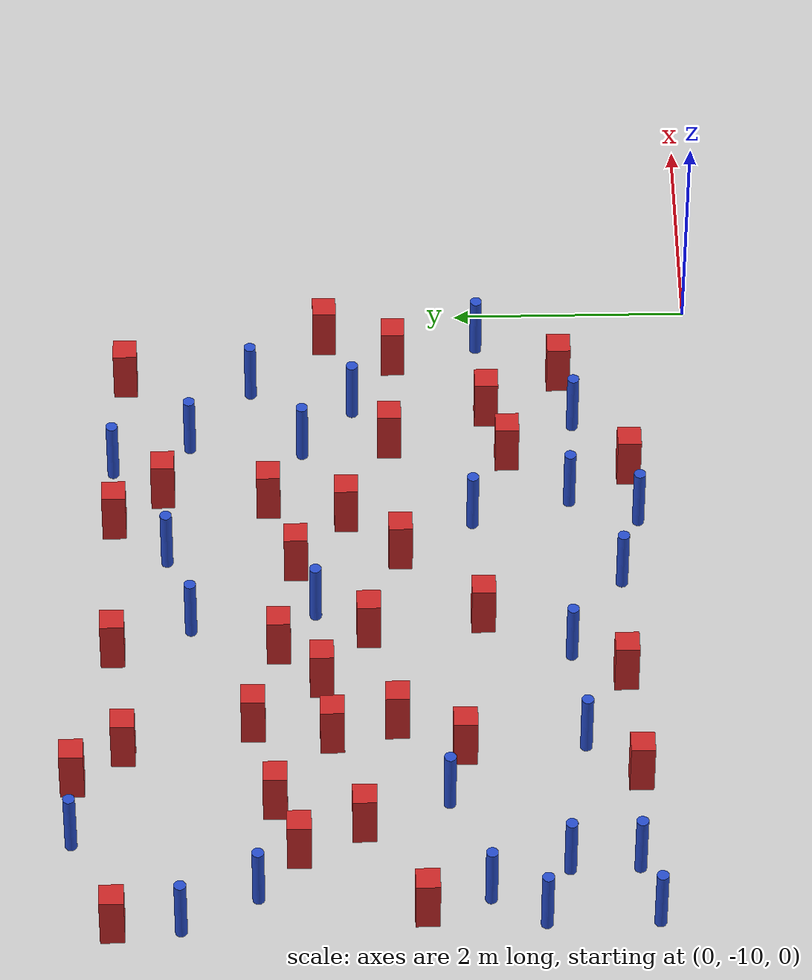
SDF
<sdf version="1.6">
 <world name="default">
  <model name="ground_plane">
   <static>1</static>
   <link name="link">
    <collision name="collision">
     <geometry><plane><normal>0 0 1</normal><size>100 100</size></plane></geometry>
     <surface><friction><ode><mu>100</mu><mu2>50</mu2></ode></friction></surface>
    </collision>
    <visual name="visual">
     <cast_shadows>0</cast_shadows>
     <geometry><plane><normal>0 0 1</normal><size>100 100</size></plane></geometry>
     <material>
      <ambient>1.0 1.0 1.0 1.0</ambient>
      <diffuse>0.8 0.8 0.8 1.0</diffuse>
      <specular>0.01 0.01 0.01 1.000000</specular>
     </material>
    </visual>
   </link>
  </model>
  <model name="pole_obstacle1">
   <static>true</static>
   <pose>-3.93958135462 -8.87356897019 -9.4761961606e-06 5.49618799729e-07 2.36310414e-07 -1.55090534824e-07</pose>
   <link name="link">
    <pose>0 0 0.3 0 -0 0</pose>
    <inertial>
     <mass>1</mass>
     <inertia><ixx>0.145833</ixx><ixy>0</ixy><ixz>0</ixz><iyy>0.145833</iyy><iyz>0</iyz><izz>0.125</izz></inertia>
    </inertial>
    <collision name="collision">
     <geometry><cylinder><radius>0.05</radius><length>.6</length></cylinder></geometry>
    </collision>
    <visual name="visual">
     <geometry><cylinder><radius>0.05</radius><length>.6</length></cylinder></geometry>
     <material>
      <script><name>Gazebo/Blue</name><uri>file://media/materials/scripts/gazebo.material</uri></script>
     </material>
    </visual>
   </link>
  </model>
  <model name="square_post_obstacle1">
   <static>true</static>
   <pose>-3.71598876451 -7.18405634265 -6.11067671241e-07 -5.50515727128e-06 -8.79689657224e-07 2.37013304536e-05</pose>
   <link name="link">
    <pose>0 0 0.25 0 -0 0</pose>
    <inertial>
     <mass>100</mass>
     <inertia>
      <ixx>0.166667</ixx>
      <ixy>0</ixy>
      <ixz>0</ixz>
      <iyy>0.166667</iyy>
      <iyz>0</iyz>
      <izz>0.166667</izz>
     </inertia>
    </inertial>
    <collision name="collision"><geometry><box><size>.2 .2 .5</size></box></geometry></collision>
    <visual name="visual">
     <geometry><box><size>.2 .2 .5</size></box></geometry>
     <material>
      <script><name>Gazebo/Red</name><uri>file://media/materials/scripts/gazebo.material</uri></script>
     </material>
    </visual>
   </link>
  </model>
  <model name="square_post_obstacle4">
   <static>true</static>
   <pose>-5.00308649444 -7.95392521139 -6.11067671241e-07 -5.50515727128e-06 -8.79689657224e-07 2.37013304536e-05</pose>
   <link name="link">
    <pose>0 0 0.25 0 -0 0</pose>
    <inertial>
     <mass>100</mass>
     <inertia>
      <ixx>0.166667</ixx>
      <ixy>0</ixy>
      <ixz>0</ixz>
      <iyy>0.166667</iyy>
      <iyz>0</iyz>
      <izz>0.166667</izz>
     </inertia>
    </inertial>
    <collision name="collision"><geometry><box><size>.2 .2 .5</size></box></geometry></collision>
    <visual name="visual">
     <geometry><box><size>.2 .2 .5</size></box></geometry>
     <material>
      <script><name>Gazebo/Red</name><uri>file://media/materials/scripts/gazebo.material</uri></script>
     </material>
    </visual>
   </link>
  </model>
  <model name="pole_obstacle10">
   <static>true</static>
   <pose>-6.2350550895 -8.77180604748 -9.47619616065e-06 5.49618799737e-07 2.36310414065e-07 -1.55090534796e-07</pose>
   <link name="link">
    <pose>0 0 0.3 0 -0 0</pose>
    <inertial>
     <mass>1</mass>
     <inertia><ixx>0.145833</ixx><ixy>0</ixy><ixz>0</ixz><iyy>0.145833</iyy><iyz>0</iyz><izz>0.125</izz></inertia>
    </inertial>
    <collision name="collision">
     <geometry><cylinder><radius>0.05</radius><length>.6</length></cylinder></geometry>
    </collision>
    <visual name="visual">
     <geometry><cylinder><radius>0.05</radius><length>.6</length></cylinder></geometry>
     <material>
      <script><name>Gazebo/Blue</name><uri>file://media/materials/scripts/gazebo.material</uri></script>
     </material>
    </visual>
   </link>
  </model>
  <model name="pole_obstacle15">
   <static>true</static>
   <pose>-1.61575275957 -6.651373899 -9.47619616065e-06 5.49618799737e-07 2.36310414061e-07 -1.550905348e-07</pose>
   <link name="link">
    <pose>0 0 0.3 0 -0 0</pose>
    <inertial>
     <mass>1</mass>
     <inertia><ixx>0.145833</ixx><ixy>0</ixy><ixz>0</ixz><iyy>0.145833</iyy><iyz>0</iyz><izz>0.125</izz></inertia>
    </inertial>
    <collision name="collision">
     <geometry><cylinder><radius>0.05</radius><length>.6</length></cylinder></geometry>
    </collision>
    <visual name="visual">
     <geometry><cylinder><radius>0.05</radius><length>.6</length></cylinder></geometry>
     <material>
      <script><name>Gazebo/Blue</name><uri>file://media/materials/scripts/gazebo.material</uri></script>
     </material>
    </visual>
   </link>
  </model>
  <model name="pole_obstacle21">
   <static>true</static>
   <pose>-2.43675443596 -9.49415780647 -9.4761961606e-06 5.49618799729e-07 2.36310414e-07 -1.55090534824e-07</pose>
   <link name="link">
    <pose>0 0 0.3 0 -0 0</pose>
    <inertial>
     <mass>1</mass>
     <inertia><ixx>0.145833</ixx><ixy>0</ixy><ixz>0</ixz><iyy>0.145833</iyy><iyz>0</iyz><izz>0.125</izz></inertia>
    </inertial>
    <collision name="collision">
     <geometry><cylinder><radius>0.05</radius><length>.6</length></cylinder></geometry>
    </collision>
    <visual name="visual">
     <geometry><cylinder><radius>0.05</radius><length>.6</length></cylinder></geometry>
     <material>
      <script><name>Gazebo/Blue</name><uri>file://media/materials/scripts/gazebo.material</uri></script>
     </material>
    </visual>
   </link>
  </model>
  <model name="square_post_obstacle25">
   <static>true</static>
   <pose>-2.40755205879 -7.01527710165 -6.11067671241e-07 -5.50515727128e-06 -8.79689657224e-07 2.37013304536e-05</pose>
   <link name="link">
    <pose>0 0 0.25 0 -0 0</pose>
    <inertial>
     <mass>100</mass>
     <inertia>
      <ixx>0.166667</ixx>
      <ixy>0</ixy>
      <ixz>0</ixz>
      <iyy>0.166667</iyy>
      <iyz>0</iyz>
      <izz>0.166667</izz>
     </inertia>
    </inertial>
    <collision name="collision"><geometry><box><size>.2 .2 .5</size></box></geometry></collision>
    <visual name="visual">
     <geometry><box><size>.2 .2 .5</size></box></geometry>
     <material>
      <script><name>Gazebo/Red</name><uri>file://media/materials/scripts/gazebo.material</uri></script>
     </material>
    </visual>
   </link>
  </model>
  <model name="square_post_obstacle33">
   <static>true</static>
   <pose>-2.10808201389 -5.46239178257 -6.11067671241e-07 -5.50515727128e-06 -8.79689657224e-07 2.37013304536e-05</pose>
   <link name="link">
    <pose>0 0 0.25 0 -0 0</pose>
    <inertial>
     <mass>100</mass>
     <inertia>
      <ixx>0.166667</ixx>
      <ixy>0</ixy>
      <ixz>0</ixz>
      <iyy>0.166667</iyy>
      <iyz>0</iyz>
      <izz>0.166667</izz>
     </inertia>
    </inertial>
    <collision name="collision"><geometry><box><size>.2 .2 .5</size></box></geometry></collision>
    <visual name="visual">
     <geometry><box><size>.2 .2 .5</size></box></geometry>
     <material>
      <script><name>Gazebo/Red</name><uri>file://media/materials/scripts/gazebo.material</uri></script>
     </material>
    </visual>
   </link>
  </model>
  <model name="square_post_obstacle34">
   <static>true</static>
   <pose>-5.81047211674 -7.11391010696 -6.11067671241e-07 -5.50515727128e-06 -8.79689657224e-07 2.37013304536e-05</pose>
   <link name="link">
    <pose>0 0 0.25 0 -0 0</pose>
    <inertial>
     <mass>100</mass>
     <inertia>
      <ixx>0.166667</ixx>
      <ixy>0</ixy>
      <ixz>0</ixz>
      <iyy>0.166667</iyy>
      <iyz>0</iyz>
      <izz>0.166667</izz>
     </inertia>
    </inertial>
    <collision name="collision"><geometry><box><size>.2 .2 .5</size></box></geometry></collision>
    <visual name="visual">
     <geometry><box><size>.2 .2 .5</size></box></geometry>
     <material>
      <script><name>Gazebo/Red</name><uri>file://media/materials/scripts/gazebo.material</uri></script>
     </material>
    </visual>
   </link>
  </model>
  <model name="pole_obstacle48">
   <static>true</static>
   <pose>-1.32325970988 -8.97596438484 -9.47619616065e-06 5.49618799737e-07 2.36310414046e-07 -1.55090534809e-07</pose>
   <link name="link">
    <pose>0 0 0.3 0 -0 0</pose>
    <inertial>
     <mass>1</mass>
     <inertia><ixx>0.145833</ixx><ixy>0</ixy><ixz>0</ixz><iyy>0.145833</iyy><iyz>0</iyz><izz>0.125</izz></inertia>
    </inertial>
    <collision name="collision">
     <geometry><cylinder><radius>0.05</radius><length>.6</length></cylinder></geometry>
    </collision>
    <visual name="visual">
     <geometry><cylinder><radius>0.05</radius><length>.6</length></cylinder></geometry>
     <material>
      <script><name>Gazebo/Blue</name><uri>file://media/materials/scripts/gazebo.material</uri></script>
     </material>
    </visual>
   </link>
  </model>
  <model name="pole_obstacle49">
   <static>true</static>
   <pose>-3.13209602185 -9.32652285121 -9.4761961606e-06 5.49618799729e-07 2.36310414e-07 -1.55090534824e-07</pose>
   <link name="link">
    <pose>0 0 0.3 0 -0 0</pose>
    <inertial>
     <mass>1</mass>
     <inertia><ixx>0.145833</ixx><ixy>0</ixy><ixz>0</ixz><iyy>0.145833</iyy><iyz>0</iyz><izz>0.125</izz></inertia>
    </inertial>
    <collision name="collision">
     <geometry><cylinder><radius>0.05</radius><length>.6</length></cylinder></geometry>
    </collision>
    <visual name="visual">
     <geometry><cylinder><radius>0.05</radius><length>.6</length></cylinder></geometry>
     <material>
      <script><name>Gazebo/Blue</name><uri>file://media/materials/scripts/gazebo.material</uri></script>
     </material>
    </visual>
   </link>
  </model>
  <model name="pole_obstacle54">
   <static>true</static>
   <pose>-4.92919472729 -8.95282086026 -9.47619616065e-06 5.49618799737e-07 2.36310414065e-07 -1.55090534796e-07</pose>
   <link name="link">
    <pose>0 0 0.3 0 -0 0</pose>
    <inertial>
     <mass>1</mass>
     <inertia><ixx>0.145833</ixx><ixy>0</ixy><ixz>0</ixz><iyy>0.145833</iyy><iyz>0</iyz><izz>0.125</izz></inertia>
    </inertial>
    <collision name="collision">
     <geometry><cylinder><radius>0.05</radius><length>.6</length></cylinder></geometry>
    </collision>
    <visual name="visual">
     <geometry><cylinder><radius>0.05</radius><length>.6</length></cylinder></geometry>
     <material>
      <script><name>Gazebo/Blue</name><uri>file://media/materials/scripts/gazebo.material</uri></script>
     </material>
    </visual>
   </link>
  </model>
  <model name="square_post_obstacle41">
   <static>true</static>
   <pose>-2.83940942109 -7.46659649584 -6.11067671241e-07 -5.50515727128e-06 -8.79689657224e-07 2.37013304536e-05</pose>
   <link name="link">
    <pose>0 0 0.25 0 -0 0</pose>
    <inertial>
     <mass>100</mass>
     <inertia>
      <ixx>0.166667</ixx>
      <ixy>0</ixy>
      <ixz>0</ixz>
      <iyy>0.166667</iyy>
      <iyz>0</iyz>
      <izz>0.166667</izz>
     </inertia>
    </inertial>
    <collision name="collision"><geometry><box><size>.2 .2 .5</size></box></geometry></collision>
    <visual name="visual">
     <geometry><box><size>.2 .2 .5</size></box></geometry>
     <material>
      <script><name>Gazebo/Red</name><uri>file://media/materials/scripts/gazebo.material</uri></script>
     </material>
    </visual>
   </link>
  </model>
  <model name="pole_obstacle61">
   <static>true</static>
   <pose>-2.83401429155 -5.49767614737 -9.47619616065e-06 5.49618799738e-07 2.3631041406e-07 -1.55090534801e-07</pose>
   <link name="link">
    <pose>0 0 0.3 0 -0 0</pose>
    <inertial>
     <mass>1</mass>
     <inertia><ixx>0.145833</ixx><ixy>0</ixy><ixz>0</ixz><iyy>0.145833</iyy><iyz>0</iyz><izz>0.125</izz></inertia>
    </inertial>
    <collision name="collision">
     <geometry><cylinder><radius>0.05</radius><length>.6</length></cylinder></geometry>
    </collision>
    <visual name="visual">
     <geometry><cylinder><radius>0.05</radius><length>.6</length></cylinder></geometry>
     <material>
      <script><name>Gazebo/Blue</name><uri>file://media/materials/scripts/gazebo.material</uri></script>
     </material>
    </visual>
   </link>
  </model>
  <model name="square_post_obstacle48">
   <static>true</static>
   <pose>-0.582938855477 -7.44501183955 -6.11067671241e-07 -5.50515727128e-06 -8.79689657224e-07 2.37013304536e-05</pose>
   <link name="link">
    <pose>0 0 0.25 0 -0 0</pose>
    <inertial>
     <mass>100</mass>
     <inertia>
      <ixx>0.166667</ixx>
      <ixy>0</ixy>
      <ixz>0</ixz>
      <iyy>0.166667</iyy>
      <iyz>0</iyz>
      <izz>0.166667</izz>
     </inertia>
    </inertial>
    <collision name="collision"><geometry><box><size>.2 .2 .5</size></box></geometry></collision>
    <visual name="visual">
     <geometry><box><size>.2 .2 .5</size></box></geometry>
     <material>
      <script><name>Gazebo/Red</name><uri>file://media/materials/scripts/gazebo.material</uri></script>
     </material>
    </visual>
   </link>
  </model>
  <model name="pole_obstacle69">
   <static>true</static>
   <pose>-3.61125424735 -5.70024070019 -9.47619616065e-06 5.49618799738e-07 2.3631041406e-07 -1.55090534801e-07</pose>
   <link name="link">
    <pose>0 0 0.3 0 -0 0</pose>
    <inertial>
     <mass>1</mass>
     <inertia><ixx>0.145833</ixx><ixy>0</ixy><ixz>0</ixz><iyy>0.145833</iyy><iyz>0</iyz><izz>0.125</izz></inertia>
    </inertial>
    <collision name="collision">
     <geometry><cylinder><radius>0.05</radius><length>.6</length></cylinder></geometry>
    </collision>
    <visual name="visual">
     <geometry><cylinder><radius>0.05</radius><length>.6</length></cylinder></geometry>
     <material>
      <script><name>Gazebo/Blue</name><uri>file://media/materials/scripts/gazebo.material</uri></script>
     </material>
    </visual>
   </link>
  </model>
  <model name="pole_obstacle71">
   <static>true</static>
   <pose>-6.52385151969 -8.12300092066 -9.47619616065e-06 5.49618799737e-07 2.36310414065e-07 -1.55090534796e-07</pose>
   <link name="link">
    <pose>0 0 0.3 0 -0 0</pose>
    <inertial>
     <mass>1</mass>
     <inertia><ixx>0.145833</ixx><ixy>0</ixy><ixz>0</ixz><iyy>0.145833</iyy><iyz>0</iyz><izz>0.125</izz></inertia>
    </inertial>
    <collision name="collision">
     <geometry><cylinder><radius>0.05</radius><length>.6</length></cylinder></geometry>
    </collision>
    <visual name="visual">
     <geometry><cylinder><radius>0.05</radius><length>.6</length></cylinder></geometry>
     <material>
      <script><name>Gazebo/Blue</name><uri>file://media/materials/scripts/gazebo.material</uri></script>
     </material>
    </visual>
   </link>
  </model>
  <model name="square_post_obstacle65">
   <static>true</static>
   <pose>-0.324675895204 -6.8553201092 -6.11067671241e-07 -5.50515727128e-06 -8.79689657224e-07 2.37013304536e-05</pose>
   <link name="link">
    <pose>0 0 0.25 0 -0 0</pose>
    <inertial>
     <mass>100</mass>
     <inertia>
      <ixx>0.166667</ixx>
      <ixy>0</ixy>
      <ixz>0</ixz>
      <iyy>0.166667</iyy>
      <iyz>0</iyz>
      <izz>0.166667</izz>
     </inertia>
    </inertial>
    <collision name="collision"><geometry><box><size>.2 .2 .5</size></box></geometry></collision>
    <visual name="visual">
     <geometry><box><size>.2 .2 .5</size></box></geometry>
     <material>
      <script><name>Gazebo/Red</name><uri>file://media/materials/scripts/gazebo.material</uri></script>
     </material>
    </visual>
   </link>
  </model>
  <model name="square_post_obstacle67">
   <static>true</static>
   <pose>-4.85919929706 -6.86458437651 -6.11067671241e-07 -5.50515727128e-06 -8.79689657224e-07 2.37013304536e-05</pose>
   <link name="link">
    <pose>0 0 0.25 0 -0 0</pose>
    <inertial>
     <mass>100</mass>
     <inertia>
      <ixx>0.166667</ixx>
      <ixy>0</ixy>
      <ixz>0</ixz>
      <iyy>0.166667</iyy>
      <iyz>0</iyz>
      <izz>0.166667</izz>
     </inertia>
    </inertial>
    <collision name="collision"><geometry><box><size>.2 .2 .5</size></box></geometry></collision>
    <visual name="visual">
     <geometry><box><size>.2 .2 .5</size></box></geometry>
     <material>
      <script><name>Gazebo/Red</name><uri>file://media/materials/scripts/gazebo.material</uri></script>
     </material>
    </visual>
   </link>
  </model>
  <model name="pole_obstacle81">
   <static>true</static>
   <pose>-5.9059826302 -4.72674082381 -9.47619616065e-06 5.49618799737e-07 2.36310414037e-07 -1.55090534814e-07</pose>
   <link name="link">
    <pose>0 0 0.3 0 -0 0</pose>
    <inertial>
     <mass>1</mass>
     <inertia><ixx>0.145833</ixx><ixy>0</ixy><ixz>0</ixz><iyy>0.145833</iyy><iyz>0</iyz><izz>0.125</izz></inertia>
    </inertial>
    <collision name="collision">
     <geometry><cylinder><radius>0.05</radius><length>.6</length></cylinder></geometry>
    </collision>
    <visual name="visual">
     <geometry><cylinder><radius>0.05</radius><length>.6</length></cylinder></geometry>
     <material>
      <script><name>Gazebo/Blue</name><uri>file://media/materials/scripts/gazebo.material</uri></script>
     </material>
    </visual>
   </link>
  </model>
  <model name="pole_obstacle83">
   <static>true</static>
   <pose>-6.22369286627 -9.34061713542 -9.47619616065e-06 5.49618799737e-07 2.36310414065e-07 -1.55090534796e-07</pose>
   <link name="link">
    <pose>0 0 0.3 0 -0 0</pose>
    <inertial>
     <mass>1</mass>
     <inertia><ixx>0.145833</ixx><ixy>0</ixy><ixz>0</ixz><iyy>0.145833</iyy><iyz>0</iyz><izz>0.125</izz></inertia>
    </inertial>
    <collision name="collision">
     <geometry><cylinder><radius>0.05</radius><length>.6</length></cylinder></geometry>
    </collision>
    <visual name="visual">
     <geometry><cylinder><radius>0.05</radius><length>.6</length></cylinder></geometry>
     <material>
      <script><name>Gazebo/Blue</name><uri>file://media/materials/scripts/gazebo.material</uri></script>
     </material>
    </visual>
   </link>
  </model>
  <model name="square_post_obstacle76">
   <static>true</static>
   <pose>-0.802507243915 -5.13421019234 -6.11067671241e-07 -5.50515727128e-06 -8.79689657224e-07 2.37013304536e-05</pose>
   <link name="link">
    <pose>0 0 0.25 0 -0 0</pose>
    <inertial>
     <mass>100</mass>
     <inertia>
      <ixx>0.166667</ixx>
      <ixy>0</ixy>
      <ixz>0</ixz>
      <iyy>0.166667</iyy>
      <iyz>0</iyz>
      <izz>0.166667</izz>
     </inertia>
    </inertial>
    <collision name="collision"><geometry><box><size>.2 .2 .5</size></box></geometry></collision>
    <visual name="visual">
     <geometry><box><size>.2 .2 .5</size></box></geometry>
     <material>
      <script><name>Gazebo/Red</name><uri>file://media/materials/scripts/gazebo.material</uri></script>
     </material>
    </visual>
   </link>
  </model>
  <model name="square_post_obstacle77">
   <static>true</static>
   <pose>-4.73055205513 -6.2149168735 -6.11067671241e-07 -5.50515727128e-06 -8.79689657224e-07 2.37013304536e-05</pose>
   <link name="link">
    <pose>0 0 0.25 0 -0 0</pose>
    <inertial>
     <mass>100</mass>
     <inertia>
      <ixx>0.166667</ixx>
      <ixy>0</ixy>
      <ixz>0</ixz>
      <iyy>0.166667</iyy>
      <iyz>0</iyz>
      <izz>0.166667</izz>
     </inertia>
    </inertial>
    <collision name="collision"><geometry><box><size>.2 .2 .5</size></box></geometry></collision>
    <visual name="visual">
     <geometry><box><size>.2 .2 .5</size></box></geometry>
     <material>
      <script><name>Gazebo/Red</name><uri>file://media/materials/scripts/gazebo.material</uri></script>
     </material>
    </visual>
   </link>
  </model>
  <model name="square_post_obstacle80">
   <static>true</static>
   <pose>-6.81748385099 -5.07398058957 -6.11067671241e-07 -5.50515727128e-06 -8.79689657224e-07 2.37013304536e-05</pose>
   <link name="link">
    <pose>0 0 0.25 0 -0 0</pose>
    <inertial>
     <mass>100</mass>
     <inertia>
      <ixx>0.166667</ixx>
      <ixy>0</ixy>
      <ixz>0</ixz>
      <iyy>0.166667</iyy>
      <iyz>0</iyz>
      <izz>0.166667</izz>
     </inertia>
    </inertial>
    <collision name="collision"><geometry><box><size>.2 .2 .5</size></box></geometry></collision>
    <visual name="visual">
     <geometry><box><size>.2 .2 .5</size></box></geometry>
     <material>
      <script><name>Gazebo/Red</name><uri>file://media/materials/scripts/gazebo.material</uri></script>
     </material>
    </visual>
   </link>
  </model>
  <model name="square_post_obstacle84">
   <static>true</static>
   <pose>-3.88152441317 -6.43173297666 -6.11067671241e-07 -5.50515727128e-06 -8.79689657224e-07 2.37013304536e-05</pose>
   <link name="link">
    <pose>0 0 0.25 0 -0 0</pose>
    <inertial>
     <mass>100</mass>
     <inertia>
      <ixx>0.166667</ixx>
      <ixy>0</ixy>
      <ixz>0</ixz>
      <iyy>0.166667</iyy>
      <iyz>0</iyz>
      <izz>0.166667</izz>
     </inertia>
    </inertial>
    <collision name="collision"><geometry><box><size>.2 .2 .5</size></box></geometry></collision>
    <visual name="visual">
     <geometry><box><size>.2 .2 .5</size></box></geometry>
     <material>
      <script><name>Gazebo/Red</name><uri>file://media/materials/scripts/gazebo.material</uri></script>
     </material>
    </visual>
   </link>
  </model>
  <model name="pole_obstacle94">
   <static>true</static>
   <pose>-1.52846313646 -5.68955188027 -9.47619616065e-06 5.49618799737e-07 2.36310414061e-07 -1.550905348e-07</pose>
   <link name="link">
    <pose>0 0 0.3 0 -0 0</pose>
    <inertial>
     <mass>1</mass>
     <inertia><ixx>0.145833</ixx><ixy>0</ixy><ixz>0</ixz><iyy>0.145833</iyy><iyz>0</iyz><izz>0.125</izz></inertia>
    </inertial>
    <collision name="collision">
     <geometry><cylinder><radius>0.05</radius><length>.6</length></cylinder></geometry>
    </collision>
    <visual name="visual">
     <geometry><cylinder><radius>0.05</radius><length>.6</length></cylinder></geometry>
     <material>
      <script><name>Gazebo/Blue</name><uri>file://media/materials/scripts/gazebo.material</uri></script>
     </material>
    </visual>
   </link>
  </model>
  <model name="square_post_obstacle88">
   <static>true</static>
   <pose>-6.07653270778 -6.58003919376 -6.11067671241e-07 -5.50515727128e-06 -8.79689657224e-07 2.37013304536e-05</pose>
   <link name="link">
    <pose>0 0 0.25 0 -0 0</pose>
    <inertial>
     <mass>100</mass>
     <inertia>
      <ixx>0.166667</ixx>
      <ixy>0</ixy>
      <ixz>0</ixz>
      <iyy>0.166667</iyy>
      <iyz>0</iyz>
      <izz>0.166667</izz>
     </inertia>
    </inertial>
    <collision name="collision"><geometry><box><size>.2 .2 .5</size></box></geometry></collision>
    <visual name="visual">
     <geometry><box><size>.2 .2 .5</size></box></geometry>
     <material>
      <script><name>Gazebo/Red</name><uri>file://media/materials/scripts/gazebo.material</uri></script>
     </material>
    </visual>
   </link>
  </model>
  <model name="square_post_obstacle99">
   <static>true</static>
   <pose>-5.3034096711 -9.38892303556 -6.11067671241e-07 -5.50515727128e-06 -8.79689657224e-07 2.37013304536e-05</pose>
   <link name="link">
    <pose>0 0 0.25 0 -0 0</pose>
    <inertial>
     <mass>100</mass>
     <inertia>
      <ixx>0.166667</ixx>
      <ixy>0</ixy>
      <ixz>0</ixz>
      <iyy>0.166667</iyy>
      <iyz>0</iyz>
      <izz>0.166667</izz>
     </inertia>
    </inertial>
    <collision name="collision"><geometry><box><size>.2 .2 .5</size></box></geometry></collision>
    <visual name="visual">
     <geometry><box><size>.2 .2 .5</size></box></geometry>
     <material>
      <script><name>Gazebo/Red</name><uri>file://media/materials/scripts/gazebo.material</uri></script>
     </material>
    </visual>
   </link>
  </model>
  <model name="square_post_obstacle102">
   <static>true</static>
   <pose>-3.56555713034 -8.14516881867 -6.11067671241e-07 -5.50515727128e-06 -8.79689657224e-07 2.37013304536e-05</pose>
   <link name="link">
    <pose>0 0 0.25 0 -0 0</pose>
    <inertial>
     <mass>100</mass>
     <inertia>
      <ixx>0.166667</ixx>
      <ixy>0</ixy>
      <ixz>0</ixz>
      <iyy>0.166667</iyy>
      <iyz>0</iyz>
      <izz>0.166667</izz>
     </inertia>
    </inertial>
    <collision name="collision"><geometry><box><size>.2 .2 .5</size></box></geometry></collision>
    <visual name="visual">
     <geometry><box><size>.2 .2 .5</size></box></geometry>
     <material>
      <script><name>Gazebo/Red</name><uri>file://media/materials/scripts/gazebo.material</uri></script>
     </material>
    </visual>
   </link>
  </model>
  <model name="pole_obstacle115">
   <static>true</static>
   <pose>-0.897417269037 -6.21297565803 -9.47619616065e-06 5.49618799737e-07 2.36310414065e-07 -1.55090534796e-07</pose>
   <link name="link">
    <pose>0 0 0.3 0 -0 0</pose>
    <inertial>
     <mass>1</mass>
     <inertia><ixx>0.145833</ixx><ixy>0</ixy><ixz>0</ixz><iyy>0.145833</iyy><iyz>0</iyz><izz>0.125</izz></inertia>
    </inertial>
    <collision name="collision">
     <geometry><cylinder><radius>0.05</radius><length>.6</length></cylinder></geometry>
    </collision>
    <visual name="visual">
     <geometry><cylinder><radius>0.05</radius><length>.6</length></cylinder></geometry>
     <material>
      <script><name>Gazebo/Blue</name><uri>file://media/materials/scripts/gazebo.material</uri></script>
     </material>
    </visual>
   </link>
  </model>
  <model name="pole_obstacle125">
   <static>true</static>
   <pose>-5.52079543256 -7.81452975866 -9.47619616065e-06 5.49618799737e-07 2.36310414037e-07 -1.55090534814e-07</pose>
   <link name="link">
    <pose>0 0 0.3 0 -0 0</pose>
    <inertial>
     <mass>1</mass>
     <inertia><ixx>0.145833</ixx><ixy>0</ixy><ixz>0</ixz><iyy>0.145833</iyy><iyz>0</iyz><izz>0.125</izz></inertia>
    </inertial>
    <collision name="collision">
     <geometry><cylinder><radius>0.05</radius><length>.6</length></cylinder></geometry>
    </collision>
    <visual name="visual">
     <geometry><cylinder><radius>0.05</radius><length>.6</length></cylinder></geometry>
     <material>
      <script><name>Gazebo/Blue</name><uri>file://media/materials/scripts/gazebo.material</uri></script>
     </material>
    </visual>
   </link>
  </model>
  <model name="square_post_obstacle123">
   <static>true</static>
   <pose>-6.69824074905 -7.60454445501 -6.11067671241e-07 -5.50515727128e-06 -8.79689657224e-07 2.37013304536e-05</pose>
   <link name="link">
    <pose>0 0 0.25 0 -0 0</pose>
    <inertial>
     <mass>100</mass>
     <inertia>
      <ixx>0.166667</ixx>
      <ixy>0</ixy>
      <ixz>0</ixz>
      <iyy>0.166667</iyy>
      <iyz>0</iyz>
      <izz>0.166667</izz>
     </inertia>
    </inertial>
    <collision name="collision"><geometry><box><size>.2 .2 .5</size></box></geometry></collision>
    <visual name="visual">
     <geometry><box><size>.2 .2 .5</size></box></geometry>
     <material>
      <script><name>Gazebo/Red</name><uri>file://media/materials/scripts/gazebo.material</uri></script>
     </material>
    </visual>
   </link>
  </model>
  <model name="square_post_obstacle128">
   <static>true</static>
   <pose>-2.24146333782 -6.35823659918 -6.11067671241e-07 -5.50515727128e-06 -8.79689657224e-07 2.37013304536e-05</pose>
   <link name="link">
    <pose>0 0 0.25 0 -0 0</pose>
    <inertial>
     <mass>100</mass>
     <inertia>
      <ixx>0.166667</ixx>
      <ixy>0</ixy>
      <ixz>0</ixz>
      <iyy>0.166667</iyy>
      <iyz>0</iyz>
      <izz>0.166667</izz>
     </inertia>
    </inertial>
    <collision name="collision"><geometry><box><size>.2 .2 .5</size></box></geometry></collision>
    <visual name="visual">
     <geometry><box><size>.2 .2 .5</size></box></geometry>
     <material>
      <script><name>Gazebo/Red</name><uri>file://media/materials/scripts/gazebo.material</uri></script>
     </material>
    </visual>
   </link>
  </model>
  <model name="square_post_obstacle130">
   <static>true</static>
   <pose>-4.25538791251 -6.78599970934 -6.11067671241e-07 -5.50515727128e-06 -8.79689657224e-07 2.37013304536e-05</pose>
   <link name="link">
    <pose>0 0 0.25 0 -0 0</pose>
    <inertial>
     <mass>100</mass>
     <inertia>
      <ixx>0.166667</ixx>
      <ixy>0</ixy>
      <ixz>0</ixz>
      <iyy>0.166667</iyy>
      <iyz>0</iyz>
      <izz>0.166667</izz>
     </inertia>
    </inertial>
    <collision name="collision"><geometry><box><size>.2 .2 .5</size></box></geometry></collision>
    <visual name="visual">
     <geometry><box><size>.2 .2 .5</size></box></geometry>
     <material>
      <script><name>Gazebo/Red</name><uri>file://media/materials/scripts/gazebo.material</uri></script>
     </material>
    </visual>
   </link>
  </model>
  <model name="pole_obstacle134">
   <static>true</static>
   <pose>-1.13186391539 -7.08592421812 -9.47619616065e-06 5.49618799737e-07 2.36310414061e-07 -1.550905348e-07</pose>
   <link name="link">
    <pose>0 0 0.3 0 -0 0</pose>
    <inertial>
     <mass>1</mass>
     <inertia><ixx>0.145833</ixx><ixy>0</ixy><ixz>0</ixz><iyy>0.145833</iyy><iyz>0</iyz><izz>0.125</izz></inertia>
    </inertial>
    <collision name="collision">
     <geometry><cylinder><radius>0.05</radius><length>.6</length></cylinder></geometry>
    </collision>
    <visual name="visual">
     <geometry><cylinder><radius>0.05</radius><length>.6</length></cylinder></geometry>
     <material>
      <script><name>Gazebo/Blue</name><uri>file://media/materials/scripts/gazebo.material</uri></script>
     </material>
    </visual>
   </link>
  </model>
  <model name="square_post_obstacle134">
   <static>true</static>
   <pose>-0.796871496763 -8.87027808656 -6.11067671241e-07 -5.50515727128e-06 -8.79689657224e-07 2.37013304536e-05</pose>
   <link name="link">
    <pose>0 0 0.25 0 -0 0</pose>
    <inertial>
     <mass>100</mass>
     <inertia>
      <ixx>0.166667</ixx>
      <ixy>0</ixy>
      <ixz>0</ixz>
      <iyy>0.166667</iyy>
      <iyz>0</iyz>
      <izz>0.166667</izz>
     </inertia>
    </inertial>
    <collision name="collision"><geometry><box><size>.2 .2 .5</size></box></geometry></collision>
    <visual name="visual">
     <geometry><box><size>.2 .2 .5</size></box></geometry>
     <material>
      <script><name>Gazebo/Red</name><uri>file://media/materials/scripts/gazebo.material</uri></script>
     </material>
    </visual>
   </link>
  </model>
  <model name="square_post_obstacle139">
   <static>true</static>
   <pose>-1.20206209135 -8.23500810361 -6.11067671241e-07 -5.50515727128e-06 -8.79689657224e-07 2.37013304536e-05</pose>
   <link name="link">
    <pose>0 0 0.25 0 -0 0</pose>
    <inertial>
     <mass>100</mass>
     <inertia>
      <ixx>0.166667</ixx>
      <ixy>0</ixy>
      <ixz>0</ixz>
      <iyy>0.166667</iyy>
      <iyz>0</iyz>
      <izz>0.166667</izz>
     </inertia>
    </inertial>
    <collision name="collision"><geometry><box><size>.2 .2 .5</size></box></geometry></collision>
    <visual name="visual">
     <geometry><box><size>.2 .2 .5</size></box></geometry>
     <material>
      <script><name>Gazebo/Red</name><uri>file://media/materials/scripts/gazebo.material</uri></script>
     </material>
    </visual>
   </link>
  </model>
  <model name="pole_obstacle143">
   <static>true</static>
   <pose>-6.78573529604 -9.47602550568 -9.47619616065e-06 5.49618799737e-07 2.36310414065e-07 -1.55090534796e-07</pose>
   <link name="link">
    <pose>0 0 0.3 0 -0 0</pose>
    <inertial>
     <mass>1</mass>
     <inertia><ixx>0.145833</ixx><ixy>0</ixy><ixz>0</ixz><iyy>0.145833</iyy><iyz>0</iyz><izz>0.125</izz></inertia>
    </inertial>
    <collision name="collision">
     <geometry><cylinder><radius>0.05</radius><length>.6</length></cylinder></geometry>
    </collision>
    <visual name="visual">
     <geometry><cylinder><radius>0.05</radius><length>.6</length></cylinder></geometry>
     <material>
      <script><name>Gazebo/Blue</name><uri>file://media/materials/scripts/gazebo.material</uri></script>
     </material>
    </visual>
   </link>
  </model>
  <model name="square_post_obstacle142">
   <static>true</static>
   <pose>-4.21948028136 -9.31223194294 -6.11067671241e-07 -5.50515727128e-06 -8.79689657224e-07 2.37013304536e-05</pose>
   <link name="link">
    <pose>0 0 0.25 0 -0 0</pose>
    <inertial>
     <mass>100</mass>
     <inertia>
      <ixx>0.166667</ixx>
      <ixy>0</ixy>
      <ixz>0</ixz>
      <iyy>0.166667</iyy>
      <iyz>0</iyz>
      <izz>0.166667</izz>
     </inertia>
    </inertial>
    <collision name="collision"><geometry><box><size>.2 .2 .5</size></box></geometry></collision>
    <visual name="visual">
     <geometry><box><size>.2 .2 .5</size></box></geometry>
     <material>
      <script><name>Gazebo/Red</name><uri>file://media/materials/scripts/gazebo.material</uri></script>
     </material>
    </visual>
   </link>
  </model>
  <model name="pole_obstacle150">
   <static>true</static>
   <pose>-0.387944350889 -8.17070219968 -9.47619616065e-06 5.49618799737e-07 2.36310414031e-07 -1.55090534818e-07</pose>
   <link name="link">
    <pose>0 0 0.3 0 -0 0</pose>
    <inertial>
     <mass>1</mass>
     <inertia><ixx>0.145833</ixx><ixy>0</ixy><ixz>0</ixz><iyy>0.145833</iyy><iyz>0</iyz><izz>0.125</izz></inertia>
    </inertial>
    <collision name="collision">
     <geometry><cylinder><radius>0.05</radius><length>.6</length></cylinder></geometry>
    </collision>
    <visual name="visual">
     <geometry><cylinder><radius>0.05</radius><length>.6</length></cylinder></geometry>
     <material>
      <script><name>Gazebo/Blue</name><uri>file://media/materials/scripts/gazebo.material</uri></script>
     </material>
    </visual>
   </link>
  </model>
  <model name="pole_obstacle158">
   <static>true</static>
   <pose>-1.80688982148 -5.03481107822 -9.47619616065e-06 5.49618799737e-07 2.36310414061e-07 -1.550905348e-07</pose>
   <link name="link">
    <pose>0 0 0.3 0 -0 0</pose>
    <inertial>
     <mass>1</mass>
     <inertia><ixx>0.145833</ixx><ixy>0</ixy><ixz>0</ixz><iyy>0.145833</iyy><iyz>0</iyz><izz>0.125</izz></inertia>
    </inertial>
    <collision name="collision">
     <geometry><cylinder><radius>0.05</radius><length>.6</length></cylinder></geometry>
    </collision>
    <visual name="visual">
     <geometry><cylinder><radius>0.05</radius><length>.6</length></cylinder></geometry>
     <material>
      <script><name>Gazebo/Blue</name><uri>file://media/materials/scripts/gazebo.material</uri></script>
     </material>
    </visual>
   </link>
  </model>
  <model name="pole_obstacle160">
   <static>true</static>
   <pose>-2.44418089528 -8.08671281846 -9.4761961606e-06 5.49618799729e-07 2.36310414e-07 -1.55090534824e-07</pose>
   <link name="link">
    <pose>0 0 0.3 0 -0 0</pose>
    <inertial>
     <mass>1</mass>
     <inertia><ixx>0.145833</ixx><ixy>0</ixy><ixz>0</ixz><iyy>0.145833</iyy><iyz>0</iyz><izz>0.125</izz></inertia>
    </inertial>
    <collision name="collision">
     <geometry><cylinder><radius>0.05</radius><length>.6</length></cylinder></geometry>
    </collision>
    <visual name="visual">
     <geometry><cylinder><radius>0.05</radius><length>.6</length></cylinder></geometry>
     <material>
      <script><name>Gazebo/Blue</name><uri>file://media/materials/scripts/gazebo.material</uri></script>
     </material>
    </visual>
   </link>
  </model>
  <model name="square_post_obstacle156">
   <static>true</static>
   <pose>-5.28851501303 -4.73083720075 -6.11067671241e-07 -5.50515727128e-06 -8.79689657224e-07 2.37013304536e-05</pose>
   <link name="link">
    <pose>0 0 0.25 0 -0 0</pose>
    <inertial>
     <mass>100</mass>
     <inertia>
      <ixx>0.166667</ixx>
      <ixy>0</ixy>
      <ixz>0</ixz>
      <iyy>0.166667</iyy>
      <iyz>0</iyz>
      <izz>0.166667</izz>
     </inertia>
    </inertial>
    <collision name="collision"><geometry><box><size>.2 .2 .5</size></box></geometry></collision>
    <visual name="visual">
     <geometry><box><size>.2 .2 .5</size></box></geometry>
     <material>
      <script><name>Gazebo/Red</name><uri>file://media/materials/scripts/gazebo.material</uri></script>
     </material>
    </visual>
   </link>
  </model>
  <model name="square_post_obstacle161">
   <static>true</static>
   <pose>-3.89408731452 -5.04946587923 -6.11067671241e-07 -5.50515727128e-06 -8.79689657224e-07 2.37013304536e-05</pose>
   <link name="link">
    <pose>0 0 0.25 0 -0 0</pose>
    <inertial>
     <mass>100</mass>
     <inertia>
      <ixx>0.166667</ixx>
      <ixy>0</ixy>
      <ixz>0</ixz>
      <iyy>0.166667</iyy>
      <iyz>0</iyz>
      <izz>0.166667</izz>
     </inertia>
    </inertial>
    <collision name="collision"><geometry><box><size>.2 .2 .5</size></box></geometry></collision>
    <visual name="visual">
     <geometry><box><size>.2 .2 .5</size></box></geometry>
     <material>
      <script><name>Gazebo/Red</name><uri>file://media/materials/scripts/gazebo.material</uri></script>
     </material>
    </visual>
   </link>
  </model>
  <model name="square_post_obstacle163">
   <static>true</static>
   <pose>-1.56123029615 -7.39573246906 -6.11067671241e-07 -5.50515727128e-06 -8.79689657224e-07 2.37013304536e-05</pose>
   <link name="link">
    <pose>0 0 0.25 0 -0 0</pose>
    <inertial>
     <mass>100</mass>
     <inertia>
      <ixx>0.166667</ixx>
      <ixy>0</ixy>
      <ixz>0</ixz>
      <iyy>0.166667</iyy>
      <iyz>0</iyz>
      <izz>0.166667</izz>
     </inertia>
    </inertial>
    <collision name="collision"><geometry><box><size>.2 .2 .5</size></box></geometry></collision>
    <visual name="visual">
     <geometry><box><size>.2 .2 .5</size></box></geometry>
     <material>
      <script><name>Gazebo/Red</name><uri>file://media/materials/scripts/gazebo.material</uri></script>
     </material>
    </visual>
   </link>
  </model>
  <model name="pole_obstacle166">
   <static>true</static>
   <pose>-3.45412944203 -6.74465618799 -9.47619616065e-06 5.49618799738e-07 2.3631041406e-07 -1.55090534801e-07</pose>
   <link name="link">
    <pose>0 0 0.3 0 -0 0</pose>
    <inertial>
     <mass>1</mass>
     <inertia><ixx>0.145833</ixx><ixy>0</ixy><ixz>0</ixz><iyy>0.145833</iyy><iyz>0</iyz><izz>0.125</izz></inertia>
    </inertial>
    <collision name="collision">
     <geometry><cylinder><radius>0.05</radius><length>.6</length></cylinder></geometry>
    </collision>
    <visual name="visual">
     <geometry><cylinder><radius>0.05</radius><length>.6</length></cylinder></geometry>
     <material>
      <script><name>Gazebo/Blue</name><uri>file://media/materials/scripts/gazebo.material</uri></script>
     </material>
    </visual>
   </link>
  </model>
  <model name="pole_obstacle169">
   <static>true</static>
   <pose>-6.81471877293 -5.62382499445 -9.47619616065e-06 5.49618799737e-07 2.36310414037e-07 -1.55090534814e-07</pose>
   <link name="link">
    <pose>0 0 0.3 0 -0 0</pose>
    <inertial>
     <mass>1</mass>
     <inertia><ixx>0.145833</ixx><ixy>0</ixy><ixz>0</ixz><iyy>0.145833</iyy><iyz>0</iyz><izz>0.125</izz></inertia>
    </inertial>
    <collision name="collision">
     <geometry><cylinder><radius>0.05</radius><length>.6</length></cylinder></geometry>
    </collision>
    <visual name="visual">
     <geometry><cylinder><radius>0.05</radius><length>.6</length></cylinder></geometry>
     <material>
      <script><name>Gazebo/Blue</name><uri>file://media/materials/scripts/gazebo.material</uri></script>
     </material>
    </visual>
   </link>
  </model>
  <model name="square_post_obstacle178">
   <static>true</static>
   <pose>-2.95512706197 -6.58468990759 -6.11067671241e-07 -5.50515727128e-06 -8.79689657224e-07 2.37013304536e-05</pose>
   <link name="link">
    <pose>0 0 0.25 0 -0 0</pose>
    <inertial>
     <mass>100</mass>
     <inertia>
      <ixx>0.166667</ixx>
      <ixy>0</ixy>
      <ixz>0</ixz>
      <iyy>0.166667</iyy>
      <iyz>0</iyz>
      <izz>0.166667</izz>
     </inertia>
    </inertial>
    <collision name="collision"><geometry><box><size>.2 .2 .5</size></box></geometry></collision>
    <visual name="visual">
     <geometry><box><size>.2 .2 .5</size></box></geometry>
     <material>
      <script><name>Gazebo/Red</name><uri>file://media/materials/scripts/gazebo.material</uri></script>
     </material>
    </visual>
   </link>
  </model>
  <model name="pole_obstacle185">
   <static>true</static>
   <pose>-6.4923282512 -6.24730556222 -9.47619616065e-06 5.49618799737e-07 2.36310414037e-07 -1.55090534814e-07</pose>
   <link name="link">
    <pose>0 0 0.3 0 -0 0</pose>
    <inertial>
     <mass>1</mass>
     <inertia><ixx>0.145833</ixx><ixy>0</ixy><ixz>0</ixz><iyy>0.145833</iyy><iyz>0</iyz><izz>0.125</izz></inertia>
    </inertial>
    <collision name="collision">
     <geometry><cylinder><radius>0.05</radius><length>.6</length></cylinder></geometry>
    </collision>
    <visual name="visual">
     <geometry><cylinder><radius>0.05</radius><length>.6</length></cylinder></geometry>
     <material>
      <script><name>Gazebo/Blue</name><uri>file://media/materials/scripts/gazebo.material</uri></script>
     </material>
    </visual>
   </link>
  </model>
  <model name="square_post_obstacle199">
   <static>true</static>
   <pose>-5.55632397868 -6.38929326828 -6.11067671241e-07 -5.50515727128e-06 -8.79689657224e-07 2.37013304536e-05</pose>
   <link name="link">
    <pose>0 0 0.25 0 -0 0</pose>
    <inertial>
     <mass>100</mass>
     <inertia>
      <ixx>0.166667</ixx>
      <ixy>0</ixy>
      <ixz>0</ixz>
      <iyy>0.166667</iyy>
      <iyz>0</iyz>
      <izz>0.166667</izz>
     </inertia>
    </inertial>
    <collision name="collision"><geometry><box><size>.2 .2 .5</size></box></geometry></collision>
    <visual name="visual">
     <geometry><box><size>.2 .2 .5</size></box></geometry>
     <material>
      <script><name>Gazebo/Red</name><uri>file://media/materials/scripts/gazebo.material</uri></script>
     </material>
    </visual>
   </link>
  </model>
  <model name="square_post_obstacle202">
   <static>true</static>
   <pose>-2.45084598523 -5.05179645164 -6.11067671241e-07 -5.50515727128e-06 -8.79689657224e-07 2.37013304536e-05</pose>
   <link name="link">
    <pose>0 0 0.25 0 -0 0</pose>
    <inertial>
     <mass>100</mass>
     <inertia>
      <ixx>0.166667</ixx>
      <ixy>0</ixy>
      <ixz>0</ixz>
      <iyy>0.166667</iyy>
      <iyz>0</iyz>
      <izz>0.166667</izz>
     </inertia>
    </inertial>
    <collision name="collision"><geometry><box><size>.2 .2 .5</size></box></geometry></collision>
    <visual name="visual">
     <geometry><box><size>.2 .2 .5</size></box></geometry>
     <material>
      <script><name>Gazebo/Red</name><uri>file://media/materials/scripts/gazebo.material</uri></script>
     </material>
    </visual>
   </link>
  </model>
  <model name="pole_obstacle196">
   <static>true</static>
   <pose>-2.20727902902 -8.91656984989 -9.4761961606e-06 5.49618799729e-07 2.36310414e-07 -1.55090534824e-07</pose>
   <link name="link">
    <pose>0 0 0.3 0 -0 0</pose>
    <inertial>
     <mass>1</mass>
     <inertia><ixx>0.145833</ixx><ixy>0</ixy><ixz>0</ixz><iyy>0.145833</iyy><iyz>0</iyz><izz>0.125</izz></inertia>
    </inertial>
    <collision name="collision">
     <geometry><cylinder><radius>0.05</radius><length>.6</length></cylinder></geometry>
    </collision>
    <visual name="visual">
     <geometry><cylinder><radius>0.05</radius><length>.6</length></cylinder></geometry>
     <material>
      <script><name>Gazebo/Blue</name><uri>file://media/materials/scripts/gazebo.material</uri></script>
     </material>
    </visual>
   </link>
  </model>
  <model name="square_post_obstacle211">
   <static>true</static>
   <pose>-4.71586110272 -7.40335615559 -6.11067671241e-07 -5.50515727128e-06 -8.79689657224e-07 2.37013304536e-05</pose>
   <link name="link">
    <pose>0 0 0.25 0 -0 0</pose>
    <inertial>
     <mass>100</mass>
     <inertia>
      <ixx>0.166667</ixx>
      <ixy>0</ixy>
      <ixz>0</ixz>
      <iyy>0.166667</iyy>
      <iyz>0</iyz>
      <izz>0.166667</izz>
     </inertia>
    </inertial>
    <collision name="collision"><geometry><box><size>.2 .2 .5</size></box></geometry></collision>
    <visual name="visual">
     <geometry><box><size>.2 .2 .5</size></box></geometry>
     <material>
      <script><name>Gazebo/Red</name><uri>file://media/materials/scripts/gazebo.material</uri></script>
     </material>
    </visual>
   </link>
  </model>
  <model name="pole_obstacle214">
   <static>true</static>
   <pose>-6.78695819015 -8.56284741489 -9.47619616065e-06 5.49618799737e-07 2.36310414065e-07 -1.55090534796e-07</pose>
   <link name="link">
    <pose>0 0 0.3 0 -0 0</pose>
    <inertial>
     <mass>1</mass>
     <inertia><ixx>0.145833</ixx><ixy>0</ixy><ixz>0</ixz><iyy>0.145833</iyy><iyz>0</iyz><izz>0.125</izz></inertia>
    </inertial>
    <collision name="collision">
     <geometry><cylinder><radius>0.05</radius><length>.6</length></cylinder></geometry>
    </collision>
    <visual name="visual">
     <geometry><cylinder><radius>0.05</radius><length>.6</length></cylinder></geometry>
     <material>
      <script><name>Gazebo/Blue</name><uri>file://media/materials/scripts/gazebo.material</uri></script>
     </material>
    </visual>
   </link>
  </model>
  <model name="square_post_obstacle226">
   <static>true</static>
   <pose>-1.9034000498 -9.43226002312 -6.11067671241e-07 -5.50515727128e-06 -8.79689657224e-07 2.37013304536e-05</pose>
   <link name="link">
    <pose>0 0 0.25 0 -0 0</pose>
    <inertial>
     <mass>100</mass>
     <inertia>
      <ixx>0.166667</ixx>
      <ixy>0</ixy>
      <ixz>0</ixz>
      <iyy>0.166667</iyy>
      <iyz>0</iyz>
      <izz>0.166667</izz>
     </inertia>
    </inertial>
    <collision name="collision"><geometry><box><size>.2 .2 .5</size></box></geometry></collision>
    <visual name="visual">
     <geometry><box><size>.2 .2 .5</size></box></geometry>
     <material>
      <script><name>Gazebo/Red</name><uri>file://media/materials/scripts/gazebo.material</uri></script>
     </material>
    </visual>
   </link>
  </model>
  <model name="square_post_obstacle227">
   <static>true</static>
   <pose>-4.9729200498 -5.14588002312 -6.11067671241e-07 -5.50515727128e-06 -8.79689657224e-07 2.37013304536e-05</pose>
   <link name="link">
    <pose>0 0 0.25 0 -0 0</pose>
    <inertial>
     <mass>100</mass>
     <inertia>
      <ixx>0.166667</ixx>
      <ixy>0</ixy>
      <ixz>0</ixz>
      <iyy>0.166667</iyy>
      <iyz>0</iyz>
      <izz>0.166667</izz>
     </inertia>
    </inertial>
    <collision name="collision"><geometry><box><size>.2 .2 .5</size></box></geometry></collision>
    <visual name="visual">
     <geometry><box><size>.2 .2 .5</size></box></geometry>
     <material>
      <script><name>Gazebo/Red</name><uri>file://media/materials/scripts/gazebo.material</uri></script>
     </material>
    </visual>
   </link>
  </model>
  <model name="square_post_obstacle234">
   <static>true</static>
   <pose>-1.7245700498 -8.39754002312 -6.11067671241e-07 -5.50515727128e-06 -8.79689657224e-07 2.37013304536e-05</pose>
   <link name="link">
    <pose>0 0 0.25 0 -0 0</pose>
    <inertial>
     <mass>100</mass>
     <inertia>
      <ixx>0.166667</ixx>
      <ixy>0</ixy>
      <ixz>0</ixz>
      <iyy>0.166667</iyy>
      <iyz>0</iyz>
      <izz>0.166667</izz>
     </inertia>
    </inertial>
    <collision name="collision"><geometry><box><size>.2 .2 .5</size></box></geometry></collision>
    <visual name="visual">
     <geometry><box><size>.2 .2 .5</size></box></geometry>
     <material>
      <script><name>Gazebo/Red</name><uri>file://media/materials/scripts/gazebo.material</uri></script>
     </material>
    </visual>
   </link>
  </model>
 </world>
</sdf>
